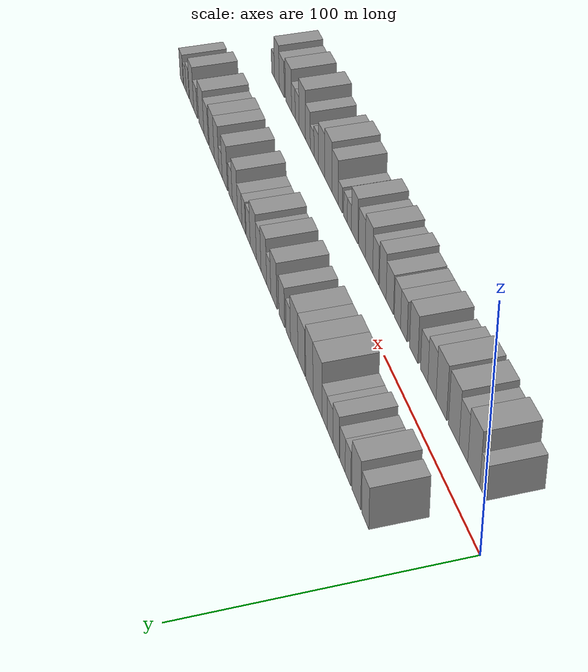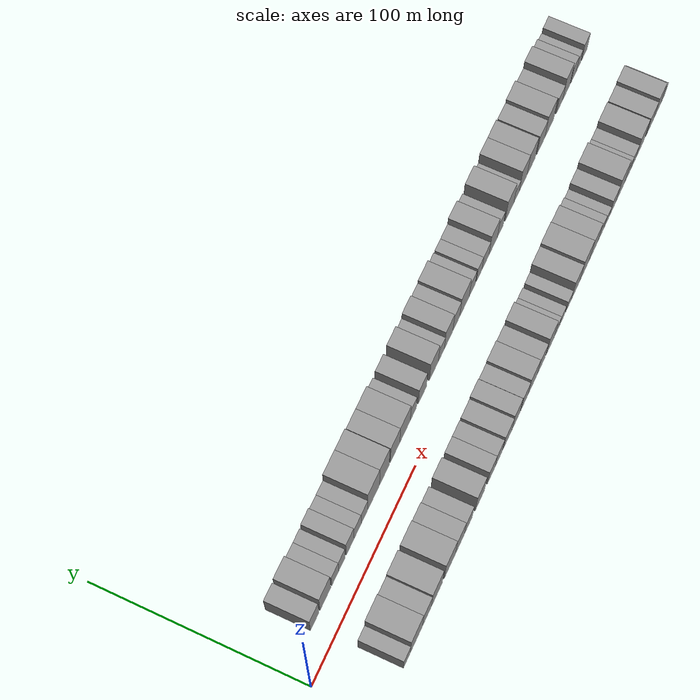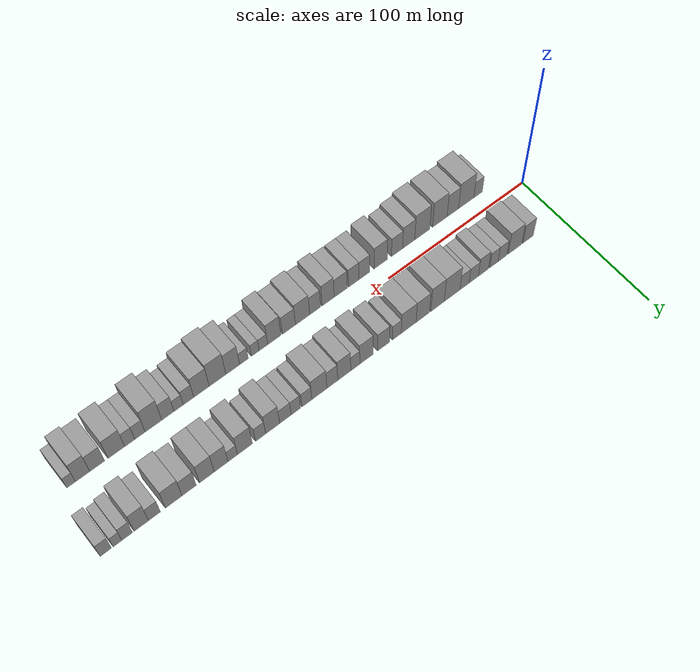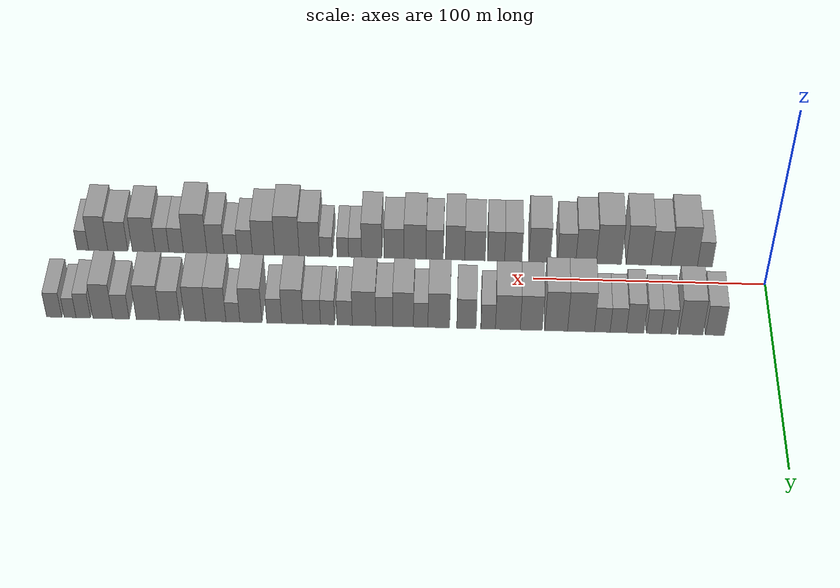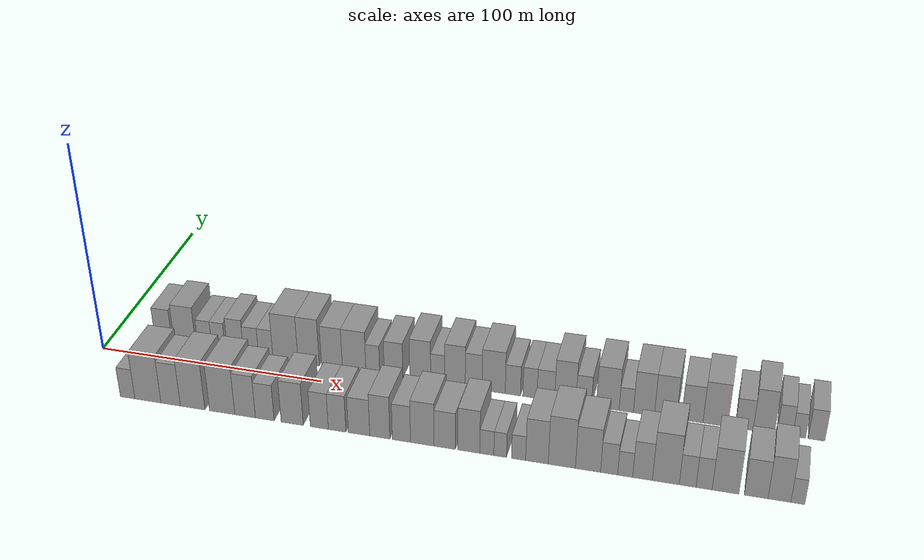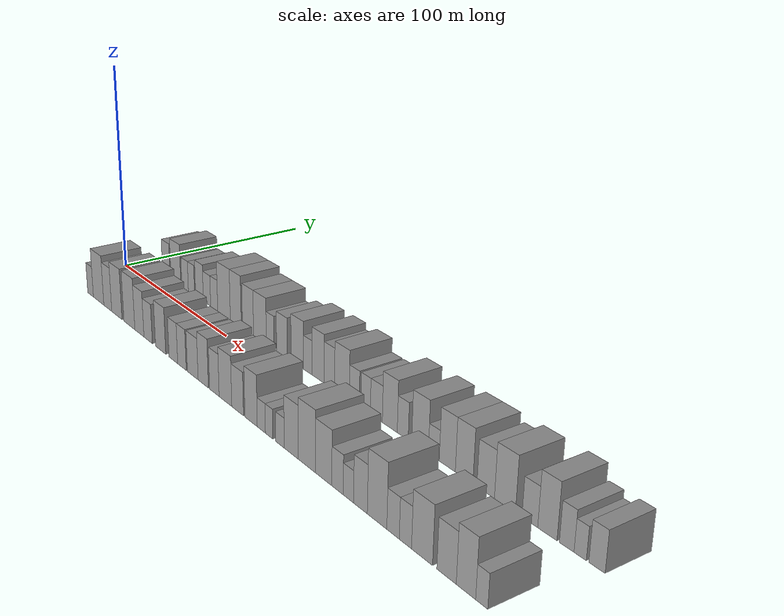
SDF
<sdf version="1.6">
 <world name="default">
  <scene>
   <sky><clouds><speed>12</speed></clouds></sky>
   <ambient>0.4 0.4 0.4 1</ambient>
   <background>0.7 0.7 0.7 1</background>
   <shadows>1</shadows>
  </scene>
  <gravity>0 0 -9.8066</gravity>
  <magnetic_field>6e-06 2.3e-05 -4.2e-05</magnetic_field>
  <physics default="0" name="default_physics" type="ode">
   <ode>
    <solver>
     <type>quick</type>
     <iters>10</iters>
     <sor>1.0</sor>
     <use_dynamic_moi_rescaling>0</use_dynamic_moi_rescaling>
    </solver>
    <constraints>
     <cfm>0</cfm>
     <erp>0.2</erp>
     <contact_max_correcting_vel>100</contact_max_correcting_vel>
     <contact_surface_layer>0.001</contact_surface_layer>
    </constraints>
   </ode>
   <max_step_size>0.004</max_step_size>
   <real_time_factor>1</real_time_factor>
   <real_time_update_rate>250</real_time_update_rate>
  </physics>
  <light name="sun" type="directional">
   <pose>0 0 10 0 0 0</pose>
   <diffuse>0.8 0.8 0.8 1</diffuse>
   <specular>0.2 0.2 0.2 1</specular>
   <attenuation>
    <range>1000</range>
    <constant>0.9</constant>
    <linear>0.01</linear>
    <quadratic>0.001</quadratic>
   </attenuation>
   <direction>-0.5 0.1 -0.9</direction>
  </light>
  <model name="building_1">
   <static>1</static>
   <pose>23.9782 20.0000 0 0.000000 0.000000 1.570796</pose>
   <link name="link">
    <pose>0 0 9.00 0 0 0</pose>
    <collision name="collision"><geometry><box><size>20.0000 7.9564 18.0000</size></box></geometry></collision>
    <visual name="visual">
     <cast_shadows>0</cast_shadows>
     <geometry><box><size>20.0000 7.9564 18.0000</size></box></geometry>
     <material>
      <script>
       <uri>model://grey_wall/materials/scripts</uri>
       <uri>model://grey_wall/materials/textures</uri>
       <name>vrc/grey_wall</name>
      </script>
     </material>
    </visual>
   </link>
  </model>
  <model name="building_2">
   <static>1</static>
   <pose>34.0243 20.0000 0 0.000000 0.000000 1.570796</pose>
   <link name="link">
    <pose>0 0 10.50 0 0 0</pose>
    <collision name="collision"><geometry><box><size>20.0000 10.1359 21.0000</size></box></geometry></collision>
    <visual name="visual">
     <cast_shadows>0</cast_shadows>
     <geometry><box><size>20.0000 10.1359 21.0000</size></box></geometry>
     <material>
      <script>
       <uri>model://grey_wall/materials/scripts</uri>
       <uri>model://grey_wall/materials/textures</uri>
       <name>vrc/grey_wall</name>
      </script>
     </material>
    </visual>
   </link>
  </model>
  <model name="building_3">
   <static>1</static>
   <pose>43.3520 20.0000 0 0.000000 0.000000 1.570796</pose>
   <link name="link">
    <pose>0 0 7.50 0 0 0</pose>
    <collision name="collision"><geometry><box><size>20.0000 6.5194 15.0000</size></box></geometry></collision>
    <visual name="visual">
     <cast_shadows>0</cast_shadows>
     <geometry><box><size>20.0000 6.5194 15.0000</size></box></geometry>
     <material>
      <script>
       <uri>model://grey_wall/materials/scripts</uri>
       <uri>model://grey_wall/materials/textures</uri>
       <name>vrc/grey_wall</name>
      </script>
     </material>
    </visual>
   </link>
  </model>
  <model name="building_4">
   <static>1</static>
   <pose>49.7134 20.0000 0 0.000000 0.000000 1.570796</pose>
   <link name="link">
    <pose>0 0 7.50 0 0 0</pose>
    <collision name="collision"><geometry><box><size>20.0000 6.2034 15.0000</size></box></geometry></collision>
    <visual name="visual">
     <cast_shadows>0</cast_shadows>
     <geometry><box><size>20.0000 6.2034 15.0000</size></box></geometry>
     <material>
      <script>
       <uri>model://grey_wall/materials/scripts</uri>
       <uri>model://grey_wall/materials/textures</uri>
       <name>vrc/grey_wall</name>
      </script>
     </material>
    </visual>
   </link>
  </model>
  <model name="building_5">
   <static>1</static>
   <pose>57.5390 20.0000 0 0.000000 0.000000 1.570796</pose>
   <link name="link">
    <pose>0 0 9.00 0 0 0</pose>
    <collision name="collision"><geometry><box><size>20.0000 7.4479 18.0000</size></box></geometry></collision>
    <visual name="visual">
     <cast_shadows>0</cast_shadows>
     <geometry><box><size>20.0000 7.4479 18.0000</size></box></geometry>
     <material>
      <script>
       <uri>model://grey_wall/materials/scripts</uri>
       <uri>model://grey_wall/materials/textures</uri>
       <name>vrc/grey_wall</name>
      </script>
     </material>
    </visual>
   </link>
  </model>
  <model name="building_6">
   <static>1</static>
   <pose>64.6937 20.0000 0 0.000000 0.000000 1.570796</pose>
   <link name="link">
    <pose>0 0 7.50 0 0 0</pose>
    <collision name="collision"><geometry><box><size>20.0000 6.8614 15.0000</size></box></geometry></collision>
    <visual name="visual">
     <cast_shadows>0</cast_shadows>
     <geometry><box><size>20.0000 6.8614 15.0000</size></box></geometry>
     <material>
      <script>
       <uri>model://grey_wall/materials/scripts</uri>
       <uri>model://grey_wall/materials/textures</uri>
       <name>vrc/grey_wall</name>
      </script>
     </material>
    </visual>
   </link>
  </model>
  <model name="building_7">
   <static>1</static>
   <pose>71.4064 20.0000 0 0.000000 0.000000 1.570796</pose>
   <link name="link">
    <pose>0 0 7.50 0 0 0</pose>
    <collision name="collision"><geometry><box><size>20.0000 6.5641 15.0000</size></box></geometry></collision>
    <visual name="visual">
     <cast_shadows>0</cast_shadows>
     <geometry><box><size>20.0000 6.5641 15.0000</size></box></geometry>
     <material>
      <script>
       <uri>model://grey_wall/materials/scripts</uri>
       <uri>model://grey_wall/materials/textures</uri>
       <name>vrc/grey_wall</name>
      </script>
     </material>
    </visual>
   </link>
  </model>
  <model name="building_8">
   <static>1</static>
   <pose>80.3810 20.0000 0 0.000000 0.000000 1.570796</pose>
   <link name="link">
    <pose>0 0 12.00 0 0 0</pose>
    <collision name="collision"><geometry><box><size>20.0000 11.3850 24.0000</size></box></geometry></collision>
    <visual name="visual">
     <cast_shadows>0</cast_shadows>
     <geometry><box><size>20.0000 11.3850 24.0000</size></box></geometry>
     <material>
      <script>
       <uri>model://grey_wall/materials/scripts</uri>
       <uri>model://grey_wall/materials/textures</uri>
       <name>vrc/grey_wall</name>
      </script>
     </material>
    </visual>
   </link>
  </model>
  <model name="building_9">
   <static>1</static>
   <pose>90.8834 20.0000 0 0.000000 0.000000 1.570796</pose>
   <link name="link">
    <pose>0 0 12.00 0 0 0</pose>
    <collision name="collision"><geometry><box><size>20.0000 9.6197 24.0000</size></box></geometry></collision>
    <visual name="visual">
     <cast_shadows>0</cast_shadows>
     <geometry><box><size>20.0000 9.6197 24.0000</size></box></geometry>
     <material>
      <script>
       <uri>model://grey_wall/materials/scripts</uri>
       <uri>model://grey_wall/materials/textures</uri>
       <name>vrc/grey_wall</name>
      </script>
     </material>
    </visual>
   </link>
  </model>
  <model name="building_10">
   <static>1</static>
   <pose>101.3758 20.0000 0 0.000000 0.000000 1.570796</pose>
   <link name="link">
    <pose>0 0 10.50 0 0 0</pose>
    <collision name="collision"><geometry><box><size>20.0000 9.3652 21.0000</size></box></geometry></collision>
    <visual name="visual">
     <cast_shadows>0</cast_shadows>
     <geometry><box><size>20.0000 9.3652 21.0000</size></box></geometry>
     <material>
      <script>
       <uri>model://grey_wall/materials/scripts</uri>
       <uri>model://grey_wall/materials/textures</uri>
       <name>vrc/grey_wall</name>
      </script>
     </material>
    </visual>
   </link>
  </model>
  <model name="building_11">
   <static>1</static>
   <pose>111.3065 20.0000 0 0.000000 0.000000 1.570796</pose>
   <link name="link">
    <pose>0 0 10.50 0 0 0</pose>
    <collision name="collision"><geometry><box><size>20.0000 10.4962 21.0000</size></box></geometry></collision>
    <visual name="visual">
     <cast_shadows>0</cast_shadows>
     <geometry><box><size>20.0000 10.4962 21.0000</size></box></geometry>
     <material>
      <script>
       <uri>model://grey_wall/materials/scripts</uri>
       <uri>model://grey_wall/materials/textures</uri>
       <name>vrc/grey_wall</name>
      </script>
     </material>
    </visual>
   </link>
  </model>
  <model name="building_12">
   <static>1</static>
   <pose>119.6241 20.0000 0 0.000000 0.000000 1.570796</pose>
   <link name="link">
    <pose>0 0 7.50 0 0 0</pose>
    <collision name="collision"><geometry><box><size>20.0000 6.1389 15.0000</size></box></geometry></collision>
    <visual name="visual">
     <cast_shadows>0</cast_shadows>
     <geometry><box><size>20.0000 6.1389 15.0000</size></box></geometry>
     <material>
      <script>
       <uri>model://grey_wall/materials/scripts</uri>
       <uri>model://grey_wall/materials/textures</uri>
       <name>vrc/grey_wall</name>
      </script>
     </material>
    </visual>
   </link>
  </model>
  <model name="building_13">
   <static>1</static>
   <pose>128.7997 20.0000 0 0.000000 0.000000 1.570796</pose>
   <link name="link">
    <pose>0 0 9.00 0 0 0</pose>
    <collision name="collision"><geometry><box><size>20.0000 8.2124 18.0000</size></box></geometry></collision>
    <visual name="visual">
     <cast_shadows>0</cast_shadows>
     <geometry><box><size>20.0000 8.2124 18.0000</size></box></geometry>
     <material>
      <script>
       <uri>model://grey_wall/materials/scripts</uri>
       <uri>model://grey_wall/materials/textures</uri>
       <name>vrc/grey_wall</name>
      </script>
     </material>
    </visual>
   </link>
  </model>
  <model name="building_14">
   <static>1</static>
   <pose>140.4853 20.0000 0 0.000000 0.000000 1.570796</pose>
   <link name="link">
    <pose>0 0 10.50 0 0 0</pose>
    <collision name="collision"><geometry><box><size>20.0000 9.1588 21.0000</size></box></geometry></collision>
    <visual name="visual">
     <cast_shadows>0</cast_shadows>
     <geometry><box><size>20.0000 9.1588 21.0000</size></box></geometry>
     <material>
      <script>
       <uri>model://grey_wall/materials/scripts</uri>
       <uri>model://grey_wall/materials/textures</uri>
       <name>vrc/grey_wall</name>
      </script>
     </material>
    </visual>
   </link>
  </model>
  <model name="building_15">
   <static>1</static>
   <pose>148.1402 20.0000 0 0.000000 0.000000 1.570796</pose>
   <link name="link">
    <pose>0 0 7.50 0 0 0</pose>
    <collision name="collision"><geometry><box><size>20.0000 6.1510 15.0000</size></box></geometry></collision>
    <visual name="visual">
     <cast_shadows>0</cast_shadows>
     <geometry><box><size>20.0000 6.1510 15.0000</size></box></geometry>
     <material>
      <script>
       <uri>model://grey_wall/materials/scripts</uri>
       <uri>model://grey_wall/materials/textures</uri>
       <name>vrc/grey_wall</name>
      </script>
     </material>
    </visual>
   </link>
  </model>
  <model name="building_16">
   <static>1</static>
   <pose>155.6129 20.0000 0 0.000000 0.000000 1.570796</pose>
   <link name="link">
    <pose>0 0 10.50 0 0 0</pose>
    <collision name="collision"><geometry><box><size>20.0000 8.7945 21.0000</size></box></geometry></collision>
    <visual name="visual">
     <cast_shadows>0</cast_shadows>
     <geometry><box><size>20.0000 8.7945 21.0000</size></box></geometry>
     <material>
      <script>
       <uri>model://grey_wall/materials/scripts</uri>
       <uri>model://grey_wall/materials/textures</uri>
       <name>vrc/grey_wall</name>
      </script>
     </material>
    </visual>
   </link>
  </model>
  <model name="building_17">
   <static>1</static>
   <pose>163.6215 20.0000 0 0.000000 0.000000 1.570796</pose>
   <link name="link">
    <pose>0 0 9.00 0 0 0</pose>
    <collision name="collision"><geometry><box><size>20.0000 7.2226 18.0000</size></box></geometry></collision>
    <visual name="visual">
     <cast_shadows>0</cast_shadows>
     <geometry><box><size>20.0000 7.2226 18.0000</size></box></geometry>
     <material>
      <script>
       <uri>model://grey_wall/materials/scripts</uri>
       <uri>model://grey_wall/materials/textures</uri>
       <name>vrc/grey_wall</name>
      </script>
     </material>
    </visual>
   </link>
  </model>
  <model name="building_18">
   <static>1</static>
   <pose>172.2004 20.0000 0 0.000000 0.000000 1.570796</pose>
   <link name="link">
    <pose>0 0 10.50 0 0 0</pose>
    <collision name="collision"><geometry><box><size>20.0000 9.9352 21.0000</size></box></geometry></collision>
    <visual name="visual">
     <cast_shadows>0</cast_shadows>
     <geometry><box><size>20.0000 9.9352 21.0000</size></box></geometry>
     <material>
      <script>
       <uri>model://grey_wall/materials/scripts</uri>
       <uri>model://grey_wall/materials/textures</uri>
       <name>vrc/grey_wall</name>
      </script>
     </material>
    </visual>
   </link>
  </model>
  <model name="building_19">
   <static>1</static>
   <pose>180.4154 20.0000 0 0.000000 0.000000 1.570796</pose>
   <link name="link">
    <pose>0 0 7.50 0 0 0</pose>
    <collision name="collision"><geometry><box><size>20.0000 6.4949 15.0000</size></box></geometry></collision>
    <visual name="visual">
     <cast_shadows>0</cast_shadows>
     <geometry><box><size>20.0000 6.4949 15.0000</size></box></geometry>
     <material>
      <script>
       <uri>model://grey_wall/materials/scripts</uri>
       <uri>model://grey_wall/materials/textures</uri>
       <name>vrc/grey_wall</name>
      </script>
     </material>
    </visual>
   </link>
  </model>
  <model name="building_20">
   <static>1</static>
   <pose>187.6658 20.0000 0 0.000000 0.000000 1.570796</pose>
   <link name="link">
    <pose>0 0 7.50 0 0 0</pose>
    <collision name="collision"><geometry><box><size>20.0000 6.0058 15.0000</size></box></geometry></collision>
    <visual name="visual">
     <cast_shadows>0</cast_shadows>
     <geometry><box><size>20.0000 6.0058 15.0000</size></box></geometry>
     <material>
      <script>
       <uri>model://grey_wall/materials/scripts</uri>
       <uri>model://grey_wall/materials/textures</uri>
       <name>vrc/grey_wall</name>
      </script>
     </material>
    </visual>
   </link>
  </model>
  <model name="building_21">
   <static>1</static>
   <pose>194.3858 20.0000 0 0.000000 0.000000 1.570796</pose>
   <link name="link">
    <pose>0 0 7.50 0 0 0</pose>
    <collision name="collision"><geometry><box><size>20.0000 7.4343 15.0000</size></box></geometry></collision>
    <visual name="visual">
     <cast_shadows>0</cast_shadows>
     <geometry><box><size>20.0000 7.4343 15.0000</size></box></geometry>
     <material>
      <script>
       <uri>model://grey_wall/materials/scripts</uri>
       <uri>model://grey_wall/materials/textures</uri>
       <name>vrc/grey_wall</name>
      </script>
     </material>
    </visual>
   </link>
  </model>
  <model name="building_22">
   <static>1</static>
   <pose>202.5969 20.0000 0 0.000000 0.000000 1.570796</pose>
   <link name="link">
    <pose>0 0 10.50 0 0 0</pose>
    <collision name="collision"><geometry><box><size>20.0000 8.9879 21.0000</size></box></geometry></collision>
    <visual name="visual">
     <cast_shadows>0</cast_shadows>
     <geometry><box><size>20.0000 8.9879 21.0000</size></box></geometry>
     <material>
      <script>
       <uri>model://grey_wall/materials/scripts</uri>
       <uri>model://grey_wall/materials/textures</uri>
       <name>vrc/grey_wall</name>
      </script>
     </material>
    </visual>
   </link>
  </model>
  <model name="building_23">
   <static>1</static>
   <pose>210.3130 20.0000 0 0.000000 0.000000 1.570796</pose>
   <link name="link">
    <pose>0 0 7.50 0 0 0</pose>
    <collision name="collision"><geometry><box><size>20.0000 6.4444 15.0000</size></box></geometry></collision>
    <visual name="visual">
     <cast_shadows>0</cast_shadows>
     <geometry><box><size>20.0000 6.4444 15.0000</size></box></geometry>
     <material>
      <script>
       <uri>model://grey_wall/materials/scripts</uri>
       <uri>model://grey_wall/materials/textures</uri>
       <name>vrc/grey_wall</name>
      </script>
     </material>
    </visual>
   </link>
  </model>
  <model name="building_24">
   <static>1</static>
   <pose>220.2439 20.0000 0 0.000000 0.000000 1.570796</pose>
   <link name="link">
    <pose>0 0 10.50 0 0 0</pose>
    <collision name="collision"><geometry><box><size>20.0000 9.4174 21.0000</size></box></geometry></collision>
    <visual name="visual">
     <cast_shadows>0</cast_shadows>
     <geometry><box><size>20.0000 9.4174 21.0000</size></box></geometry>
     <material>
      <script>
       <uri>model://grey_wall/materials/scripts</uri>
       <uri>model://grey_wall/materials/textures</uri>
       <name>vrc/grey_wall</name>
      </script>
     </material>
    </visual>
   </link>
  </model>
  <model name="building_25">
   <static>1</static>
   <pose>227.9159 20.0000 0 0.000000 0.000000 1.570796</pose>
   <link name="link">
    <pose>0 0 6.00 0 0 0</pose>
    <collision name="collision"><geometry><box><size>20.0000 5.9267 12.0000</size></box></geometry></collision>
    <visual name="visual">
     <cast_shadows>0</cast_shadows>
     <geometry><box><size>20.0000 5.9267 12.0000</size></box></geometry>
     <material>
      <script>
       <uri>model://grey_wall/materials/scripts</uri>
       <uri>model://grey_wall/materials/textures</uri>
       <name>vrc/grey_wall</name>
      </script>
     </material>
    </visual>
   </link>
  </model>
  <model name="building_26">
   <static>1</static>
   <pose>235.1707 20.0000 0 0.000000 0.000000 1.570796</pose>
   <link name="link">
    <pose>0 0 10.50 0 0 0</pose>
    <collision name="collision"><geometry><box><size>20.0000 8.5828 21.0000</size></box></geometry></collision>
    <visual name="visual">
     <cast_shadows>0</cast_shadows>
     <geometry><box><size>20.0000 8.5828 21.0000</size></box></geometry>
     <material>
      <script>
       <uri>model://grey_wall/materials/scripts</uri>
       <uri>model://grey_wall/materials/textures</uri>
       <name>vrc/grey_wall</name>
      </script>
     </material>
    </visual>
   </link>
  </model>
  <model name="building_27">
   <static>1</static>
   <pose>243.9886 20.0000 0 0.000000 0.000000 1.570796</pose>
   <link name="link">
    <pose>0 0 10.50 0 0 0</pose>
    <collision name="collision"><geometry><box><size>20.0000 9.0531 21.0000</size></box></geometry></collision>
    <visual name="visual">
     <cast_shadows>0</cast_shadows>
     <geometry><box><size>20.0000 9.0531 21.0000</size></box></geometry>
     <material>
      <script>
       <uri>model://grey_wall/materials/scripts</uri>
       <uri>model://grey_wall/materials/textures</uri>
       <name>vrc/grey_wall</name>
      </script>
     </material>
    </visual>
   </link>
  </model>
  <model name="building_28">
   <static>1</static>
   <pose>254.8428 20.0000 0 0.000000 0.000000 1.570796</pose>
   <link name="link">
    <pose>0 0 9.00 0 0 0</pose>
    <collision name="collision"><geometry><box><size>20.0000 8.6553 18.0000</size></box></geometry></collision>
    <visual name="visual">
     <cast_shadows>0</cast_shadows>
     <geometry><box><size>20.0000 8.6553 18.0000</size></box></geometry>
     <material>
      <script>
       <uri>model://grey_wall/materials/scripts</uri>
       <uri>model://grey_wall/materials/textures</uri>
       <name>vrc/grey_wall</name>
      </script>
     </material>
    </visual>
   </link>
  </model>
  <model name="building_29">
   <static>1</static>
   <pose>264.1635 20.0000 0 0.000000 0.000000 1.570796</pose>
   <link name="link">
    <pose>0 0 10.50 0 0 0</pose>
    <collision name="collision"><geometry><box><size>20.0000 9.9860 21.0000</size></box></geometry></collision>
    <visual name="visual">
     <cast_shadows>0</cast_shadows>
     <geometry><box><size>20.0000 9.9860 21.0000</size></box></geometry>
     <material>
      <script>
       <uri>model://grey_wall/materials/scripts</uri>
       <uri>model://grey_wall/materials/textures</uri>
       <name>vrc/grey_wall</name>
      </script>
     </material>
    </visual>
   </link>
  </model>
  <model name="building_30">
   <static>1</static>
   <pose>275.7116 20.0000 0 0.000000 0.000000 1.570796</pose>
   <link name="link">
    <pose>0 0 7.50 0 0 0</pose>
    <collision name="collision"><geometry><box><size>20.0000 7.1102 15.0000</size></box></geometry></collision>
    <visual name="visual">
     <cast_shadows>0</cast_shadows>
     <geometry><box><size>20.0000 7.1102 15.0000</size></box></geometry>
     <material>
      <script>
       <uri>model://grey_wall/materials/scripts</uri>
       <uri>model://grey_wall/materials/textures</uri>
       <name>vrc/grey_wall</name>
      </script>
     </material>
    </visual>
   </link>
  </model>
  <model name="building_31">
   <static>1</static>
   <pose>283.4940 20.0000 0 0.000000 0.000000 1.570796</pose>
   <link name="link">
    <pose>0 0 10.50 0 0 0</pose>
    <collision name="collision"><geometry><box><size>20.0000 8.4546 21.0000</size></box></geometry></collision>
    <visual name="visual">
     <cast_shadows>0</cast_shadows>
     <geometry><box><size>20.0000 8.4546 21.0000</size></box></geometry>
     <material>
      <script>
       <uri>model://grey_wall/materials/scripts</uri>
       <uri>model://grey_wall/materials/textures</uri>
       <name>vrc/grey_wall</name>
      </script>
     </material>
    </visual>
   </link>
  </model>
  <model name="building_32">
   <static>1</static>
   <pose>291.8101 20.0000 0 0.000000 0.000000 1.570796</pose>
   <link name="link">
    <pose>0 0 7.50 0 0 0</pose>
    <collision name="collision"><geometry><box><size>20.0000 6.1775 15.0000</size></box></geometry></collision>
    <visual name="visual">
     <cast_shadows>0</cast_shadows>
     <geometry><box><size>20.0000 6.1775 15.0000</size></box></geometry>
     <material>
      <script>
       <uri>model://grey_wall/materials/scripts</uri>
       <uri>model://grey_wall/materials/textures</uri>
       <name>vrc/grey_wall</name>
      </script>
     </material>
    </visual>
   </link>
  </model>
  <model name="building_33">
   <static>1</static>
   <pose>297.4344 20.0000 0 0.000000 0.000000 1.570796</pose>
   <link name="link">
    <pose>0 0 6.00 0 0 0</pose>
    <collision name="collision"><geometry><box><size>20.0000 5.0711 12.0000</size></box></geometry></collision>
    <visual name="visual">
     <cast_shadows>0</cast_shadows>
     <geometry><box><size>20.0000 5.0711 12.0000</size></box></geometry>
     <material>
      <script>
       <uri>model://grey_wall/materials/scripts</uri>
       <uri>model://grey_wall/materials/textures</uri>
       <name>vrc/grey_wall</name>
      </script>
     </material>
    </visual>
   </link>
  </model>
  <model name="building_34">
   <static>1</static>
   <pose>304.2357 20.0000 0 0.000000 0.000000 1.570796</pose>
   <link name="link">
    <pose>0 0 7.50 0 0 0</pose>
    <collision name="collision"><geometry><box><size>20.0000 6.5314 15.0000</size></box></geometry></collision>
    <visual name="visual">
     <cast_shadows>0</cast_shadows>
     <geometry><box><size>20.0000 6.5314 15.0000</size></box></geometry>
     <material>
      <script>
       <uri>model://grey_wall/materials/scripts</uri>
       <uri>model://grey_wall/materials/textures</uri>
       <name>vrc/grey_wall</name>
      </script>
     </material>
    </visual>
   </link>
  </model>
  <model name="building_35">
   <static>1</static>
   <pose>25.2598 -20.0000 0 0.000000 0.000000 1.570796</pose>
   <link name="link">
    <pose>0 0 7.50 0 0 0</pose>
    <collision name="collision"><geometry><box><size>20.0000 6.5197 15.0000</size></box></geometry></collision>
    <visual name="visual">
     <cast_shadows>0</cast_shadows>
     <geometry><box><size>20.0000 6.5197 15.0000</size></box></geometry>
     <material>
      <script>
       <uri>model://grey_wall/materials/scripts</uri>
       <uri>model://grey_wall/materials/textures</uri>
       <name>vrc/grey_wall</name>
      </script>
     </material>
    </visual>
   </link>
  </model>
  <model name="building_36">
   <static>1</static>
   <pose>34.3475 -20.0000 0 0.000000 0.000000 1.570796</pose>
   <link name="link">
    <pose>0 0 12.00 0 0 0</pose>
    <collision name="collision"><geometry><box><size>20.0000 11.6556 24.0000</size></box></geometry></collision>
    <visual name="visual">
     <cast_shadows>0</cast_shadows>
     <geometry><box><size>20.0000 11.6556 24.0000</size></box></geometry>
     <material>
      <script>
       <uri>model://grey_wall/materials/scripts</uri>
       <uri>model://grey_wall/materials/textures</uri>
       <name>vrc/grey_wall</name>
      </script>
     </material>
    </visual>
   </link>
  </model>
  <model name="building_37">
   <static>1</static>
   <pose>44.4739 -20.0000 0 0.000000 0.000000 1.570796</pose>
   <link name="link">
    <pose>0 0 10.50 0 0 0</pose>
    <collision name="collision"><geometry><box><size>20.0000 8.5973 21.0000</size></box></geometry></collision>
    <visual name="visual">
     <cast_shadows>0</cast_shadows>
     <geometry><box><size>20.0000 8.5973 21.0000</size></box></geometry>
     <material>
      <script>
       <uri>model://grey_wall/materials/scripts</uri>
       <uri>model://grey_wall/materials/textures</uri>
       <name>vrc/grey_wall</name>
      </script>
     </material>
    </visual>
   </link>
  </model>
  <model name="building_38">
   <static>1</static>
   <pose>54.1903 -20.0000 0 0.000000 0.000000 1.570796</pose>
   <link name="link">
    <pose>0 0 12.00 0 0 0</pose>
    <collision name="collision"><geometry><box><size>20.0000 10.8354 24.0000</size></box></geometry></collision>
    <visual name="visual">
     <cast_shadows>0</cast_shadows>
     <geometry><box><size>20.0000 10.8354 24.0000</size></box></geometry>
     <material>
      <script>
       <uri>model://grey_wall/materials/scripts</uri>
       <uri>model://grey_wall/materials/textures</uri>
       <name>vrc/grey_wall</name>
      </script>
     </material>
    </visual>
   </link>
  </model>
  <model name="building_39">
   <static>1</static>
   <pose>67.1425 -20.0000 0 0.000000 0.000000 1.570796</pose>
   <link name="link">
    <pose>0 0 12.00 0 0 0</pose>
    <collision name="collision"><geometry><box><size>20.0000 11.0689 24.0000</size></box></geometry></collision>
    <visual name="visual">
     <cast_shadows>0</cast_shadows>
     <geometry><box><size>20.0000 11.0689 24.0000</size></box></geometry>
     <material>
      <script>
       <uri>model://grey_wall/materials/scripts</uri>
       <uri>model://grey_wall/materials/textures</uri>
       <name>vrc/grey_wall</name>
      </script>
     </material>
    </visual>
   </link>
  </model>
  <model name="building_40">
   <static>1</static>
   <pose>77.1371 -20.0000 0 0.000000 0.000000 1.570796</pose>
   <link name="link">
    <pose>0 0 10.50 0 0 0</pose>
    <collision name="collision"><geometry><box><size>20.0000 8.9204 21.0000</size></box></geometry></collision>
    <visual name="visual">
     <cast_shadows>0</cast_shadows>
     <geometry><box><size>20.0000 8.9204 21.0000</size></box></geometry>
     <material>
      <script>
       <uri>model://grey_wall/materials/scripts</uri>
       <uri>model://grey_wall/materials/textures</uri>
       <name>vrc/grey_wall</name>
      </script>
     </material>
    </visual>
   </link>
  </model>
  <model name="building_41">
   <static>1</static>
   <pose>85.6351 -20.0000 0 0.000000 0.000000 1.570796</pose>
   <link name="link">
    <pose>0 0 9.00 0 0 0</pose>
    <collision name="collision"><geometry><box><size>20.0000 8.0756 18.0000</size></box></geometry></collision>
    <visual name="visual">
     <cast_shadows>0</cast_shadows>
     <geometry><box><size>20.0000 8.0756 18.0000</size></box></geometry>
     <material>
      <script>
       <uri>model://grey_wall/materials/scripts</uri>
       <uri>model://grey_wall/materials/textures</uri>
       <name>vrc/grey_wall</name>
      </script>
     </material>
    </visual>
   </link>
  </model>
  <model name="building_42">
   <static>1</static>
   <pose>97.3928 -20.0000 0 0.000000 0.000000 1.570796</pose>
   <link name="link">
    <pose>0 0 10.50 0 0 0</pose>
    <collision name="collision"><geometry><box><size>20.0000 9.4398 21.0000</size></box></geometry></collision>
    <visual name="visual">
     <cast_shadows>0</cast_shadows>
     <geometry><box><size>20.0000 9.4398 21.0000</size></box></geometry>
     <material>
      <script>
       <uri>model://grey_wall/materials/scripts</uri>
       <uri>model://grey_wall/materials/textures</uri>
       <name>vrc/grey_wall</name>
      </script>
     </material>
    </visual>
   </link>
  </model>
  <model name="building_43">
   <static>1</static>
   <pose>108.9366 -20.0000 0 0.000000 0.000000 1.570796</pose>
   <link name="link">
    <pose>0 0 9.00 0 0 0</pose>
    <collision name="collision"><geometry><box><size>20.0000 7.6477 18.0000</size></box></geometry></collision>
    <visual name="visual">
     <cast_shadows>0</cast_shadows>
     <geometry><box><size>20.0000 7.6477 18.0000</size></box></geometry>
     <material>
      <script>
       <uri>model://grey_wall/materials/scripts</uri>
       <uri>model://grey_wall/materials/textures</uri>
       <name>vrc/grey_wall</name>
      </script>
     </material>
    </visual>
   </link>
  </model>
  <model name="building_44">
   <static>1</static>
   <pose>116.4740 -20.0000 0 0.000000 0.000000 1.570796</pose>
   <link name="link">
    <pose>0 0 9.00 0 0 0</pose>
    <collision name="collision"><geometry><box><size>20.0000 7.4270 18.0000</size></box></geometry></collision>
    <visual name="visual">
     <cast_shadows>0</cast_shadows>
     <geometry><box><size>20.0000 7.4270 18.0000</size></box></geometry>
     <material>
      <script>
       <uri>model://grey_wall/materials/scripts</uri>
       <uri>model://grey_wall/materials/textures</uri>
       <name>vrc/grey_wall</name>
      </script>
     </material>
    </visual>
   </link>
  </model>
  <model name="building_45">
   <static>1</static>
   <pose>125.6845 -20.0000 0 0.000000 0.000000 1.570796</pose>
   <link name="link">
    <pose>0 0 9.00 0 0 0</pose>
    <collision name="collision"><geometry><box><size>20.0000 8.9940 18.0000</size></box></geometry></collision>
    <visual name="visual">
     <cast_shadows>0</cast_shadows>
     <geometry><box><size>20.0000 8.9940 18.0000</size></box></geometry>
     <material>
      <script>
       <uri>model://grey_wall/materials/scripts</uri>
       <uri>model://grey_wall/materials/textures</uri>
       <name>vrc/grey_wall</name>
      </script>
     </material>
    </visual>
   </link>
  </model>
  <model name="building_46">
   <static>1</static>
   <pose>134.3841 -20.0000 0 0.000000 0.000000 1.570796</pose>
   <link name="link">
    <pose>0 0 10.50 0 0 0</pose>
    <collision name="collision"><geometry><box><size>20.0000 8.4052 21.0000</size></box></geometry></collision>
    <visual name="visual">
     <cast_shadows>0</cast_shadows>
     <geometry><box><size>20.0000 8.4052 21.0000</size></box></geometry>
     <material>
      <script>
       <uri>model://grey_wall/materials/scripts</uri>
       <uri>model://grey_wall/materials/textures</uri>
       <name>vrc/grey_wall</name>
      </script>
     </material>
    </visual>
   </link>
  </model>
  <model name="building_47">
   <static>1</static>
   <pose>143.3334 -20.0000 0 0.000000 0.000000 1.570796</pose>
   <link name="link">
    <pose>0 0 9.00 0 0 0</pose>
    <collision name="collision"><geometry><box><size>20.0000 7.4933 18.0000</size></box></geometry></collision>
    <visual name="visual">
     <cast_shadows>0</cast_shadows>
     <geometry><box><size>20.0000 7.4933 18.0000</size></box></geometry>
     <material>
      <script>
       <uri>model://grey_wall/materials/scripts</uri>
       <uri>model://grey_wall/materials/textures</uri>
       <name>vrc/grey_wall</name>
      </script>
     </material>
    </visual>
   </link>
  </model>
  <model name="building_48">
   <static>1</static>
   <pose>151.9348 -20.0000 0 0.000000 0.000000 1.570796</pose>
   <link name="link">
    <pose>0 0 10.50 0 0 0</pose>
    <collision name="collision"><geometry><box><size>20.0000 9.7095 21.0000</size></box></geometry></collision>
    <visual name="visual">
     <cast_shadows>0</cast_shadows>
     <geometry><box><size>20.0000 9.7095 21.0000</size></box></geometry>
     <material>
      <script>
       <uri>model://grey_wall/materials/scripts</uri>
       <uri>model://grey_wall/materials/textures</uri>
       <name>vrc/grey_wall</name>
      </script>
     </material>
    </visual>
   </link>
  </model>
  <model name="building_49">
   <static>1</static>
   <pose>161.1634 -20.0000 0 0.000000 0.000000 1.570796</pose>
   <link name="link">
    <pose>0 0 9.00 0 0 0</pose>
    <collision name="collision"><geometry><box><size>20.0000 8.7479 18.0000</size></box></geometry></collision>
    <visual name="visual">
     <cast_shadows>0</cast_shadows>
     <geometry><box><size>20.0000 8.7479 18.0000</size></box></geometry>
     <material>
      <script>
       <uri>model://grey_wall/materials/scripts</uri>
       <uri>model://grey_wall/materials/textures</uri>
       <name>vrc/grey_wall</name>
      </script>
     </material>
    </visual>
   </link>
  </model>
  <model name="building_50">
   <static>1</static>
   <pose>170.9783 -20.0000 0 0.000000 0.000000 1.570796</pose>
   <link name="link">
    <pose>0 0 10.50 0 0 0</pose>
    <collision name="collision"><geometry><box><size>20.0000 8.8819 21.0000</size></box></geometry></collision>
    <visual name="visual">
     <cast_shadows>0</cast_shadows>
     <geometry><box><size>20.0000 8.8819 21.0000</size></box></geometry>
     <material>
      <script>
       <uri>model://grey_wall/materials/scripts</uri>
       <uri>model://grey_wall/materials/textures</uri>
       <name>vrc/grey_wall</name>
      </script>
     </material>
    </visual>
   </link>
  </model>
  <model name="building_51">
   <static>1</static>
   <pose>178.2595 -20.0000 0 0.000000 0.000000 1.570796</pose>
   <link name="link">
    <pose>0 0 6.00 0 0 0</pose>
    <collision name="collision"><geometry><box><size>20.0000 5.6805 12.0000</size></box></geometry></collision>
    <visual name="visual">
     <cast_shadows>0</cast_shadows>
     <geometry><box><size>20.0000 5.6805 12.0000</size></box></geometry>
     <material>
      <script>
       <uri>model://grey_wall/materials/scripts</uri>
       <uri>model://grey_wall/materials/textures</uri>
       <name>vrc/grey_wall</name>
      </script>
     </material>
    </visual>
   </link>
  </model>
  <model name="building_52">
   <static>1</static>
   <pose>183.6359 -20.0000 0 0.000000 0.000000 1.570796</pose>
   <link name="link">
    <pose>0 0 6.00 0 0 0</pose>
    <collision name="collision"><geometry><box><size>20.0000 5.0723 12.0000</size></box></geometry></collision>
    <visual name="visual">
     <cast_shadows>0</cast_shadows>
     <geometry><box><size>20.0000 5.0723 12.0000</size></box></geometry>
     <material>
      <script>
       <uri>model://grey_wall/materials/scripts</uri>
       <uri>model://grey_wall/materials/textures</uri>
       <name>vrc/grey_wall</name>
      </script>
     </material>
    </visual>
   </link>
  </model>
  <model name="building_53">
   <static>1</static>
   <pose>190.9990 -20.0000 0 0.000000 0.000000 1.570796</pose>
   <link name="link">
    <pose>0 0 6.00 0 0 0</pose>
    <collision name="collision"><geometry><box><size>20.0000 5.6539 12.0000</size></box></geometry></collision>
    <visual name="visual">
     <cast_shadows>0</cast_shadows>
     <geometry><box><size>20.0000 5.6539 12.0000</size></box></geometry>
     <material>
      <script>
       <uri>model://grey_wall/materials/scripts</uri>
       <uri>model://grey_wall/materials/textures</uri>
       <name>vrc/grey_wall</name>
      </script>
     </material>
    </visual>
   </link>
  </model>
  <model name="building_54">
   <static>1</static>
   <pose>198.3238 -20.0000 0 0.000000 0.000000 1.570796</pose>
   <link name="link">
    <pose>0 0 10.50 0 0 0</pose>
    <collision name="collision"><geometry><box><size>20.0000 8.9957 21.0000</size></box></geometry></collision>
    <visual name="visual">
     <cast_shadows>0</cast_shadows>
     <geometry><box><size>20.0000 8.9957 21.0000</size></box></geometry>
     <material>
      <script>
       <uri>model://grey_wall/materials/scripts</uri>
       <uri>model://grey_wall/materials/textures</uri>
       <name>vrc/grey_wall</name>
      </script>
     </material>
    </visual>
   </link>
  </model>
  <model name="building_55">
   <static>1</static>
   <pose>208.1954 -20.0000 0 0.000000 0.000000 1.570796</pose>
   <link name="link">
    <pose>0 0 12.00 0 0 0</pose>
    <collision name="collision"><geometry><box><size>20.0000 10.7476 24.0000</size></box></geometry></collision>
    <visual name="visual">
     <cast_shadows>0</cast_shadows>
     <geometry><box><size>20.0000 10.7476 24.0000</size></box></geometry>
     <material>
      <script>
       <uri>model://grey_wall/materials/scripts</uri>
       <uri>model://grey_wall/materials/textures</uri>
       <name>vrc/grey_wall</name>
      </script>
     </material>
    </visual>
   </link>
  </model>
  <model name="building_56">
   <static>1</static>
   <pose>218.4985 -20.0000 0 0.000000 0.000000 1.570796</pose>
   <link name="link">
    <pose>0 0 10.50 0 0 0</pose>
    <collision name="collision"><geometry><box><size>20.0000 9.8584 21.0000</size></box></geometry></collision>
    <visual name="visual">
     <cast_shadows>0</cast_shadows>
     <geometry><box><size>20.0000 9.8584 21.0000</size></box></geometry>
     <material>
      <script>
       <uri>model://grey_wall/materials/scripts</uri>
       <uri>model://grey_wall/materials/textures</uri>
       <name>vrc/grey_wall</name>
      </script>
     </material>
    </visual>
   </link>
  </model>
  <model name="building_57">
   <static>1</static>
   <pose>226.7543 -20.0000 0 0.000000 0.000000 1.570796</pose>
   <link name="link">
    <pose>0 0 7.50 0 0 0</pose>
    <collision name="collision"><geometry><box><size>20.0000 6.6532 15.0000</size></box></geometry></collision>
    <visual name="visual">
     <cast_shadows>0</cast_shadows>
     <geometry><box><size>20.0000 6.6532 15.0000</size></box></geometry>
     <material>
      <script>
       <uri>model://grey_wall/materials/scripts</uri>
       <uri>model://grey_wall/materials/textures</uri>
       <name>vrc/grey_wall</name>
      </script>
     </material>
    </visual>
   </link>
  </model>
  <model name="building_58">
   <static>1</static>
   <pose>232.9922 -20.0000 0 0.000000 0.000000 1.570796</pose>
   <link name="link">
    <pose>0 0 6.00 0 0 0</pose>
    <collision name="collision"><geometry><box><size>20.0000 5.8227 12.0000</size></box></geometry></collision>
    <visual name="visual">
     <cast_shadows>0</cast_shadows>
     <geometry><box><size>20.0000 5.8227 12.0000</size></box></geometry>
     <material>
      <script>
       <uri>model://grey_wall/materials/scripts</uri>
       <uri>model://grey_wall/materials/textures</uri>
       <name>vrc/grey_wall</name>
      </script>
     </material>
    </visual>
   </link>
  </model>
  <model name="building_59">
   <static>1</static>
   <pose>239.7053 -20.0000 0 0.000000 0.000000 1.570796</pose>
   <link name="link">
    <pose>0 0 9.00 0 0 0</pose>
    <collision name="collision"><geometry><box><size>20.0000 7.6035 18.0000</size></box></geometry></collision>
    <visual name="visual">
     <cast_shadows>0</cast_shadows>
     <geometry><box><size>20.0000 7.6035 18.0000</size></box></geometry>
     <material>
      <script>
       <uri>model://grey_wall/materials/scripts</uri>
       <uri>model://grey_wall/materials/textures</uri>
       <name>vrc/grey_wall</name>
      </script>
     </material>
    </visual>
   </link>
  </model>
  <model name="building_60">
   <static>1</static>
   <pose>248.6630 -20.0000 0 0.000000 0.000000 1.570796</pose>
   <link name="link">
    <pose>0 0 12.00 0 0 0</pose>
    <collision name="collision"><geometry><box><size>20.0000 10.3118 24.0000</size></box></geometry></collision>
    <visual name="visual">
     <cast_shadows>0</cast_shadows>
     <geometry><box><size>20.0000 10.3118 24.0000</size></box></geometry>
     <material>
      <script>
       <uri>model://grey_wall/materials/scripts</uri>
       <uri>model://grey_wall/materials/textures</uri>
       <name>vrc/grey_wall</name>
      </script>
     </material>
    </visual>
   </link>
  </model>
  <model name="building_61">
   <static>1</static>
   <pose>257.0058 -20.0000 0 0.000000 0.000000 1.570796</pose>
   <link name="link">
    <pose>0 0 7.50 0 0 0</pose>
    <collision name="collision"><geometry><box><size>20.0000 6.3739 15.0000</size></box></geometry></collision>
    <visual name="visual">
     <cast_shadows>0</cast_shadows>
     <geometry><box><size>20.0000 6.3739 15.0000</size></box></geometry>
     <material>
      <script>
       <uri>model://grey_wall/materials/scripts</uri>
       <uri>model://grey_wall/materials/textures</uri>
       <name>vrc/grey_wall</name>
      </script>
     </material>
    </visual>
   </link>
  </model>
  <model name="building_62">
   <static>1</static>
   <pose>263.2469 -20.0000 0 0.000000 0.000000 1.570796</pose>
   <link name="link">
    <pose>0 0 7.50 0 0 0</pose>
    <collision name="collision"><geometry><box><size>20.0000 6.1083 15.0000</size></box></geometry></collision>
    <visual name="visual">
     <cast_shadows>0</cast_shadows>
     <geometry><box><size>20.0000 6.1083 15.0000</size></box></geometry>
     <material>
      <script>
       <uri>model://grey_wall/materials/scripts</uri>
       <uri>model://grey_wall/materials/textures</uri>
       <name>vrc/grey_wall</name>
      </script>
     </material>
    </visual>
   </link>
  </model>
  <model name="building_63">
   <static>1</static>
   <pose>271.3573 -20.0000 0 0.000000 0.000000 1.570796</pose>
   <link name="link">
    <pose>0 0 10.50 0 0 0</pose>
    <collision name="collision"><geometry><box><size>20.0000 10.1124 21.0000</size></box></geometry></collision>
    <visual name="visual">
     <cast_shadows>0</cast_shadows>
     <geometry><box><size>20.0000 10.1124 21.0000</size></box></geometry>
     <material>
      <script>
       <uri>model://grey_wall/materials/scripts</uri>
       <uri>model://grey_wall/materials/textures</uri>
       <name>vrc/grey_wall</name>
      </script>
     </material>
    </visual>
   </link>
  </model>
  <model name="building_64">
   <static>1</static>
   <pose>282.8412 -20.0000 0 0.000000 0.000000 1.570796</pose>
   <link name="link">
    <pose>0 0 9.00 0 0 0</pose>
    <collision name="collision"><geometry><box><size>20.0000 8.8554 18.0000</size></box></geometry></collision>
    <visual name="visual">
     <cast_shadows>0</cast_shadows>
     <geometry><box><size>20.0000 8.8554 18.0000</size></box></geometry>
     <material>
      <script>
       <uri>model://grey_wall/materials/scripts</uri>
       <uri>model://grey_wall/materials/textures</uri>
       <name>vrc/grey_wall</name>
      </script>
     </material>
    </visual>
   </link>
  </model>
  <model name="building_65">
   <static>1</static>
   <pose>291.5247 -20.0000 0 0.000000 0.000000 1.570796</pose>
   <link name="link">
    <pose>0 0 10.50 0 0 0</pose>
    <collision name="collision"><geometry><box><size>20.0000 8.5116 21.0000</size></box></geometry></collision>
    <visual name="visual">
     <cast_shadows>0</cast_shadows>
     <geometry><box><size>20.0000 8.5116 21.0000</size></box></geometry>
     <material>
      <script>
       <uri>model://grey_wall/materials/scripts</uri>
       <uri>model://grey_wall/materials/textures</uri>
       <name>vrc/grey_wall</name>
      </script>
     </material>
    </visual>
   </link>
  </model>
  <model name="building_66">
   <static>1</static>
   <pose>298.3608 -20.0000 0 0.000000 0.000000 1.570796</pose>
   <link name="link">
    <pose>0 0 6.00 0 0 0</pose>
    <collision name="collision"><geometry><box><size>20.0000 5.1606 12.0000</size></box></geometry></collision>
    <visual name="visual">
     <cast_shadows>0</cast_shadows>
     <geometry><box><size>20.0000 5.1606 12.0000</size></box></geometry>
     <material>
      <script>
       <uri>model://grey_wall/materials/scripts</uri>
       <uri>model://grey_wall/materials/textures</uri>
       <name>vrc/grey_wall</name>
      </script>
     </material>
    </visual>
   </link>
  </model>
 </world>
</sdf>
